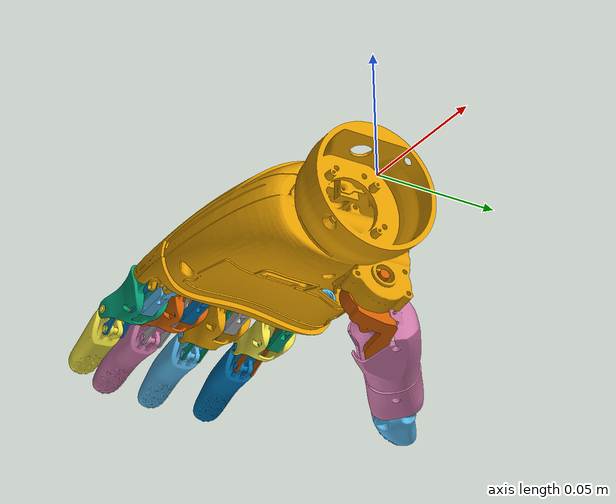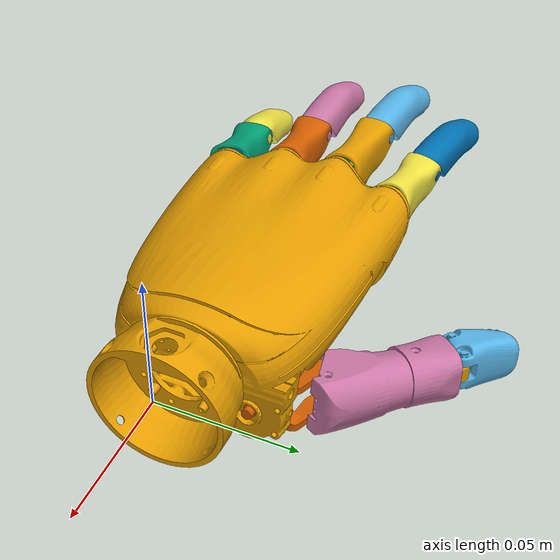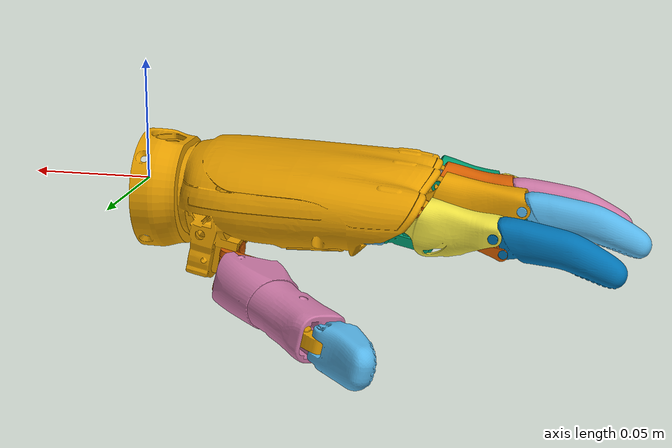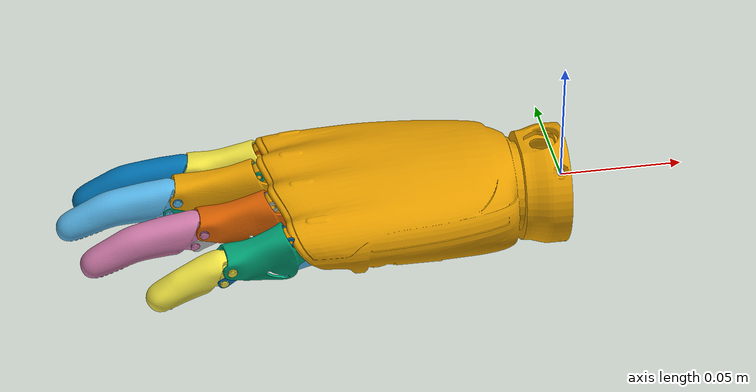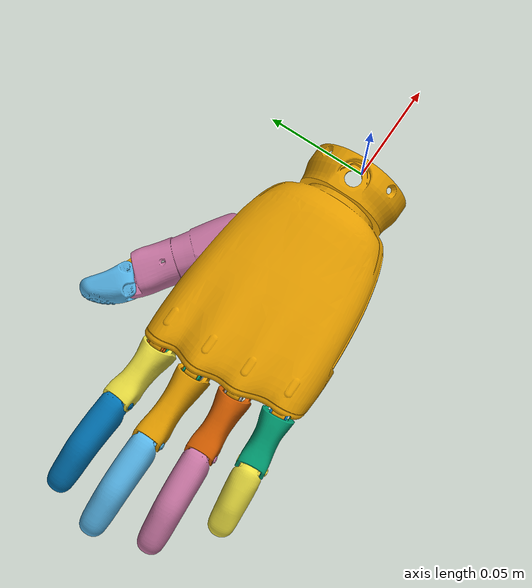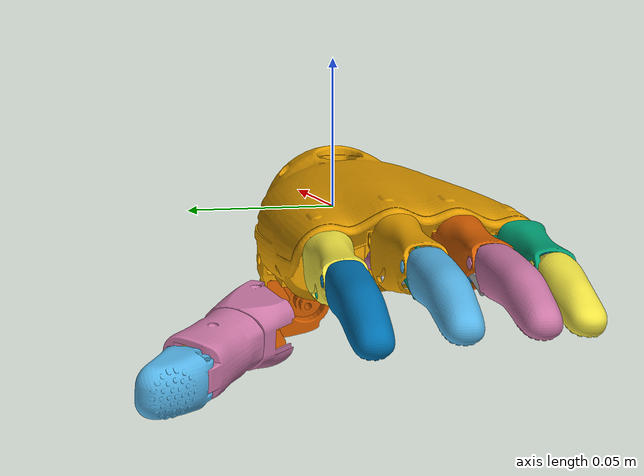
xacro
<?xml version="1.0" encoding="utf-8"?>
<robot name="OyMotion_$(arg type)" xmlns:xacro="http://www.ros.org/wiki/xacro">

	<xacro:arg name="type" default="rohand_gen2"/>
	<xacro:arg name="direction" default="1"/>

	<xacro:if value="${'$(arg type)' == 'rohand_gen2'}">
		<xacro:include filename="$(find oymotion_description)/xacro/rohand_gen2.xacro"/>
		<!-- 创建手部 (direction=1 为左手, direction=-1 为右手) -->
		<xacro:RoHandGen2 name="" direction="$(arg direction)"/>
	</xacro:if>

</robot>

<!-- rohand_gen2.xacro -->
<robot xmlns:xacro="http://www.ros.org/wiki/xacro">

	<xacro:macro name="RoHandGen2" params="name direction:=1 use_flange:=false fixed_joints:=false">
		<xacro:property name="prefix" value="${name + '_' if name else ''}"/>
		<xacro:property name="joint_type" value="${fixed_joints and 'fixed' or 'revolute'}"/>
		<xacro:property name="mesh_dir" value="${direction == 1 and 'meshes_l' or 'meshes_r'}"/>

		<!-- 手掌基座 (Hand Base) -->
		<link name="${prefix}hand_base">
			<inertial>
				<origin
						xyz="${direction == 1 and -0.0598893430300278 or -0.0601501237613002} ${direction*0.00158270648081169} -0.000121136868490832"/>
				<mass value="${direction == 1 and 0.0556275033895707 or 0.0567346930426757}"/>
				<inertia ixx="${direction == 1 and 2.49950041605433E-05 or 2.52815486560786E-05}"
								 ixy="${direction*1.27338810372926E-06}"
								 ixz="1.27175531802948E-06"
								 iyy="${direction == 1 and 3.31543651634603E-05 or 3.34458829784634E-05}"
								 iyz="${direction*4.65327956822343E-07}"
								 izz="${direction == 1 and 5.13224795287908E-05 or 5.18881189962893E-05}"/>
			</inertial>
			<visual>
				<geometry>
					<mesh filename="file://$(find oymotion_description)/meshes/rohand_gen2/base.obj" scale="1 ${direction} 1"/>
				</geometry>
			</visual>
			<collision>
				<geometry>
					<mesh filename="file://$(find oymotion_description)/meshes/rohand_gen2/base.obj" scale="1 ${direction} 1"/>
				</geometry>
			</collision>
		</link>

		<!-- 食指部分 (Index Finger - IF) -->
		<link name="${prefix}if_slider_link">
			<inertial>
				<origin
						xyz="-0.0138798261687736 ${direction*-1.63409975148521E-06} 1.56270413966333E-06"/>
				<mass value="0.000489121771249986"/>
				<inertia ixx="4.370139384762E-09"
								 ixy="${direction*7.06571113144488E-12}"
								 ixz="-1.07232864031138E-11"
								 iyy="3.84653443316186E-08"
								 iyz="${direction*7.09192685575601E-11}"
								 izz="3.92709222469408E-08"/>
			</inertial>
			<visual>
				<origin rpy="${direction*-0.07854} 0 0"/>
				<geometry>
					<mesh filename="file://$(find oymotion_description)/meshes/rohand_gen2/index_slider.obj"/>
				</geometry>
			</visual>
		</link>

		<joint name="${prefix}if_slider_link" type="prismatic">
			<origin xyz="-0.074388 ${direction*0.026652} -0.009751" rpy="0 0 ${direction*-0.083036}"/>
			<parent link="${prefix}hand_base"/>
			<child link="${prefix}if_slider_link"/>
			<axis xyz="1 0 0"/>
			<limit lower="0" upper="0.019" effort="0" velocity="0"/>
			<mimic joint="${prefix}index_joint" multiplier="0.01319444444" offset="0"/>
		</joint>

		<link name="${prefix}if_slider_abpart_link">
			<inertial>
				<origin
						xyz="-0.0105388475535051 -0.00349917028494312 -0.000539137690977614"/>
				<mass value="0.000420484116155222"/>
				<inertia ixx="1.76368054774551E-09"
								 ixy="1.07634598493537E-14"
								 ixz="-7.09975808646362E-10"
								 iyy="5.75814101151068E-09"
								 iyz="4.93512397675637E-15"
								 izz="6.21834665938993E-09"/>
			</inertial>
			<visual>
				<geometry>
					<mesh filename="file://$(find oymotion_description)/meshes/rohand_gen2/index_slider_abpart.obj"/>
				</geometry>
			</visual>
		</link>

		<joint name="${prefix}if_slider_abpart_link" type="fixed">
			<origin xyz="-0.029 0.0034859 ${direction*-0.00030434}" rpy="${direction*-0.087248} -0.0072243 0.0006319"/>
			<parent link="${prefix}if_slider_link"/>
			<child link="${prefix}if_slider_abpart_link"/>
			<axis xyz="0 1 0"/>
		</joint>

		<link name="${prefix}if_proximal_link">
			<inertial>
				<origin
						xyz="-0.0175140448638131 -0.00710044451763348 -0.0021340861272751"/>
				<mass value="0.00193519028805872"/>
				<inertia ixx="1.03940233353317E-07"
								 ixy="-1.03365620758552E-11"
								 ixz="1.27422660090348E-08"
								 iyy="2.32561269712758E-07"
								 iyz="-1.62211930568835E-12"
								 izz="2.36271452872982E-07"/>
			</inertial>
			<visual>
				<geometry>
					<mesh filename="file://$(find oymotion_description)/meshes/rohand_gen2/index_proximal.obj"
								scale="1 ${direction} 1"/>
				</geometry>
			</visual>
			<collision>
				<geometry>
					<mesh filename="file://$(find oymotion_description)/meshes/rohand_gen2/index_proximal.obj"
								scale="1 ${direction} 1"/>
				</geometry>
			</collision>
		</link>

		<joint name="${prefix}index_joint" type="revolute">
			<origin xyz="-0.1124 ${direction*0.037665} -0.0018024"
							rpy="${direction*-0.087248} -0.0072243 ${direction*-0.082404}"/>
			<parent link="${prefix}hand_base"/>
			<child link="${prefix}if_proximal_link"/>
			<axis xyz="0 -1 0"/>
			<limit lower="0" upper="1.44" effort="100" velocity="1"/>
		</joint>

		<link name="${prefix}if_distal_link">
			<inertial>
				<origin
						xyz="-0.0216633283077257 -0.00711560309930698 -0.00711907576465214"/>
				<mass value="0.00606060335159451"/>
				<inertia ixx="2.69279757341436E-07"
								 ixy="-6.25072148244773E-10"
								 ixz="-3.49035523733027E-07"
								 iyy="1.14783910667898E-06"
								 iyz="-8.57695095976865E-11"
								 izz="1.03262931906131E-06"/>
			</inertial>
			<visual>
				<geometry>
					<mesh filename="file://$(find oymotion_description)/meshes/rohand_gen2/index_distal.obj"
								scale="1 ${direction} 1"/>
				</geometry>
			</visual>
			<collision>
				<geometry>
					<mesh filename="file://$(find oymotion_description)/meshes/rohand_gen2/index_distal.obj"
								scale="1 ${direction} 1"/>
				</geometry>
			</collision>
		</link>

		<joint name="${prefix}if_distal_link" type="revolute">
			<origin xyz="-0.035842 0 -0.0023622"/>
			<parent link="${prefix}if_proximal_link"/>
			<child link="${prefix}if_distal_link"/>
			<axis xyz="0 -1 0"/>
			<limit lower="-0.378" upper="1.19" effort="100" velocity="1"/>
			<mimic joint="${prefix}index_joint" multiplier="1.08" offset="0.10472"/>
		</joint>

		<link name="${prefix}if_connecting_link">
			<inertial>
				<origin
						xyz="-0.0151010853330651 -0.00440000674510219 -0.00767252595733173"/>
				<mass value="0.000200341201168535"/>
				<inertia ixx="4.93599937155989E-09"
								 ixy="2.50110659785052E-22"
								 ixz="-9.91569202916332E-09"
								 iyy="2.67058367602193E-08"
								 iyz="8.72055160784029E-22"
								 izz="2.17912071167841E-08"/>
			</inertial>
			<visual>
				<geometry>
					<mesh filename="file://$(find oymotion_description)/meshes/rohand_gen2/index_connecting.obj"
								scale="1 ${direction} 1"/>
				</geometry>
			</visual>
		</link>

		<joint name="${prefix}if_connecting_link" type="revolute">
			<origin xyz="-0.11999 ${direction*0.035982} 0.0028163"
							rpy="${direction*-0.087248} -0.0072243 ${direction*-0.082404}"/>
			<parent link="${prefix}hand_base"/>
			<child link="${prefix}if_connecting_link"/>
			<axis xyz="0 -1 0"/>
			<limit lower="0" upper="1.44" effort="100" velocity="1"/>
			<mimic joint="${prefix}index_joint" multiplier="1" offset="0"/>
		</joint>

		<!-- 中指部分 (Middle Finger - MF) -->
		<link name="${prefix}mf_slider_link">
			<inertial>
				<origin
						xyz="-0.013879738947006 ${direction*-1.74897052737655E-06} 1.40815508845385E-06"/>
				<mass value="0.000489119216361822"/>
				<inertia ixx="4.37013728212438E-09"
								 ixy="${direction*8.09553980810116E-12}"
								 ixz="-1.01030547668162E-11"
								 iyy="3.84584635162927E-08"
								 iyz="${direction*-4.54664355226095E-14}"
								 izz="3.92763952727526E-08"/>
			</inertial>
			<visual>
				<geometry>
					<mesh filename="file://$(find oymotion_description)/meshes/rohand_gen2/index_slider.obj"/>
				</geometry>
			</visual>
		</link>

		<joint name="${prefix}mf_slider_link" type="prismatic">
			<origin xyz="-0.076966 ${direction*0.010074} -0.0054828" rpy="0 -4.7445E-05 ${direction*-0.013233}"/>
			<parent link="${prefix}hand_base"/>
			<child link="${prefix}mf_slider_link"/>
			<axis xyz="1 0 0"/>
			<limit lower="0" upper="0.019" effort="0" velocity="0"/>
			<mimic joint="${prefix}middle_joint" multiplier="0.01319444444" offset="0"/>
		</joint>

		<link name="${prefix}mf_slider_abpart_link">
			<inertial>
				<origin
						xyz="-0.0105343614474077 -0.00349998169282451 -0.000626801144449402"/>
				<mass value="0.000420507611933596"/>
				<inertia ixx="1.77591171959881E-09"
								 ixy="2.18465118929228E-14"
								 ixz="-7.46901101885596E-10"
								 iyy="5.75823388134478E-09"
								 iyz="${direction*-4.72877750426105E-15}"
								 izz="6.2064243581891E-09"/>
			</inertial>
			<visual>
				<geometry>
					<mesh filename="file://$(find oymotion_description)/meshes/rohand_gen2/index_slider_abpart.obj"/>
				</geometry>
			</visual>
		</link>

		<joint name="${prefix}mf_slider_abpart_link" type="fixed">
			<origin xyz="-0.029 0.0034992 0" rpy="${direction*-5.1711E-05} 4.6769E-05 0"/>
			<parent link="${prefix}mf_slider_link"/>
			<child link="${prefix}mf_slider_abpart_link"/>
			<axis xyz="0 1 0"/>
			<limit lower="-1.57" upper="1.57" effort="100" velocity="1"/>
		</joint>

		<link name="${prefix}mf_proximal_link">
			<inertial>
				<origin
						xyz="-0.0195726069209327 -0.00709993798307246 -0.0025925009808324"/>
				<mass value="0.00237722144967564"/>
				<inertia ixx="1.38350918039604E-07"
								 ixy="3.97589496119107E-12"
								 ixz="1.62917114105389E-08"
								 iyy="3.62213150878017E-07"
								 iyz="-4.71018831231994E-13"
								 izz="3.53062757955048E-07"/>
			</inertial>
			<visual>
				<geometry>
					<mesh filename="file://$(find oymotion_description)/meshes/rohand_gen2/middle_proximal.obj"
								scale="1 ${direction} 1"/>
				</geometry>
			</visual>
			<collision>
				<geometry>
					<mesh filename="file://$(find oymotion_description)/meshes/rohand_gen2/middle_proximal.obj"
								scale="1 ${direction} 1"/>
				</geometry>
			</collision>
		</link>

		<joint name="${prefix}middle_joint" type="revolute">
			<origin xyz="-0.11567 ${direction*0.017687} 0.0031149" rpy="${direction*-5.1083E-05} 0 ${direction*-0.013233}"/>
			<parent link="${prefix}hand_base"/>
			<child link="${prefix}mf_proximal_link"/>
			<axis xyz="0 -1 0"/>
			<limit lower="0" upper="1.44" effort="100" velocity="1"/>
		</joint>

		<link name="${prefix}mf_distal_link">
			<inertial>
				<origin
						xyz="-0.0222974016366708 -0.00711558403314083 -0.00477681256742756"/>
				<mass value="0.00606061622476954"/>
				<inertia ixx="2.04134343687428E-07"
								 ixy="-6.30322389240146E-10"
								 ixz="-2.6048594906679E-07"
								 iyy="1.1478347378536E-06"
								 iyz="-2.06612639823312E-11"
								 izz="1.09777031784971E-06"/>
			</inertial>
			<visual>
				<geometry>
					<mesh filename="file://$(find oymotion_description)/meshes/rohand_gen2/index_distal.obj"
								scale="1 ${direction} 1"/>
				</geometry>
			</visual>
			<collision>
				<geometry>
					<mesh filename="file://$(find oymotion_description)/meshes/rohand_gen2/index_distal.obj"
								scale="1 ${direction} 1"/>
				</geometry>
			</collision>
		</link>

		<joint name="${prefix}mf_distal_link" type="revolute">
			<origin xyz="-0.040918 0 -0.0027058"/>
			<parent link="${prefix}mf_proximal_link"/>
			<child link="${prefix}mf_distal_link"/>
			<axis xyz="0 -1 0"/>
			<limit lower="-0.378" upper="1.19" effort="100" velocity="1"/>
			<mimic joint="${prefix}middle_joint" multiplier="1.14" offset="0"/>
		</joint>

		<link name="${prefix}mf_connecting_link">
			<inertial>
				<origin
						xyz="-0.0178219448735733 -0.00440000679587479 -0.00781642890952098"/>
				<mass value="0.000215108931947231"/>
				<inertia ixx="5.12266479684199E-09"
								 ixy="${direction*-2.30231599132434E-16}"
								 ixz="-1.23169151647663E-08"
								 iyy="3.73207495269829E-08"
								 iyz="${direction*-1.76315646093205E-17}"
								 izz="3.22210301621937E-08"/>
			</inertial>
			<visual>
				<geometry>
					<mesh filename="file://$(find oymotion_description)/meshes/rohand_gen2/middle_connecting.obj"
								scale="1 ${direction} 1"/>
				</geometry>
			</visual>
		</link>

		<joint name="${prefix}mf_connecting_link" type="revolute">
			<origin xyz="-0.12312 ${direction*0.015086} 0.0075148" rpy="${direction*-5.1083E-05} 0 ${direction*-0.013233}"/>
			<parent link="${prefix}hand_base"/>
			<child link="${prefix}mf_connecting_link"/>
			<axis xyz="0 -1 0"/>
			<limit lower="0" upper="1.44" effort="100" velocity="1"/>
			<mimic joint="${prefix}middle_joint" multiplier="1" offset="0"/>
		</joint>

		<!-- 无名指部分 (Ring Finger - RF) -->
		<link name="${prefix}rf_slider_link">
			<inertial>
				<origin
						xyz="-0.0138798258009711 ${direction*-1.7630856294637E-06} 1.41436010220319E-06"/>
				<mass value="0.000489121716234798"/>
				<inertia ixx="4.37013924272089E-09"
								 ixy="${direction*7.98341349100753E-12}"
								 ixz="-1.00637162967002E-11"
								 iyy="3.84591429779013E-08"
								 iyz="${direction*-2.39260015530946E-14}"
								 izz="3.92771122673803E-08"/>
			</inertial>
			<visual>
				<geometry>
					<mesh filename="file://$(find oymotion_description)/meshes/rohand_gen2/index_slider.obj"/>
				</geometry>
			</visual>
		</link>

		<joint name="${prefix}rf_slider_link" type="prismatic">
			<origin xyz="-0.074491 ${direction*-0.0072514} -0.0062279" rpy="0 -9.51E-05 ${direction*0.056583}"/>
			<parent link="${prefix}hand_base"/>
			<child link="${prefix}rf_slider_link"/>
			<axis xyz="1 0 0"/>
			<limit lower="0" upper="0.019" effort="0" velocity="0"/>
			<mimic joint="${prefix}ring_joint" multiplier="0.01319444444" offset="0"/>
		</joint>

		<link name="${prefix}rf_slider_abpart_link">
			<inertial>
				<origin
						xyz="-0.0105346161828967 -0.0034991714039278 -0.000616604082522784"/>
				<mass value="0.000420484347510521"/>
				<inertia ixx="1.7743695373506E-09"
								 ixy="${direction*-6.61128484560698E-16}"
								 ixz="-7.4264758660374E-10"
								 iyy="5.75818415756346E-09"
								 iyz="${direction*9.7586839459254E-16}"
								 izz="6.20770251900989E-09"/>
			</inertial>
			<visual>
				<geometry>
					<mesh filename="file://$(find oymotion_description)/meshes/rohand_gen2/index_slider_abpart.obj"/>
				</geometry>
			</visual>
		</link>

		<joint name="${prefix}rf_slider_abpart_link" type="fixed">
			<origin xyz="-0.029 0.0034992 0" rpy="${direction*-7.4035E-05} 9.9598E-05 0"/>
			<parent link="${prefix}rf_slider_link"/>
			<child link="${prefix}rf_slider_abpart_link"/>
			<axis xyz="0 1 0"/>
		</joint>

		<link name="${prefix}rf_proximal_link">
			<inertial>
				<origin
						xyz="-0.0174979508864504 -0.00710049013135008 -0.00226277263902305"/>
				<mass value="0.00193520497103009"/>
				<inertia ixx="1.0376023209322E-07"
								 ixy="-1.1368612880424E-11"
								 ixz="1.17683465238561E-08"
								 iyy="2.32563708976524E-07"
								 iyz="-1.57696849032522E-12"
								 izz="2.36453950760326E-07"/>
			</inertial>
			<visual>
				<geometry>
					<mesh filename="file://$(find oymotion_description)/meshes/rohand_gen2/index_proximal.obj"
								scale="1 ${direction} 1"/>
				</geometry>
			</visual>
			<collision>
				<geometry>
					<mesh filename="file://$(find oymotion_description)/meshes/rohand_gen2/index_proximal.obj"
								scale="1 ${direction} 1"/>
				</geometry>
			</collision>
		</link>

		<joint name="${prefix}ring_joint" type="revolute">
			<origin xyz="-0.11363 ${direction*-0.0023572} 0.0023678" rpy="${direction*-7.9422E-05} 0 ${direction*0.056583}"/>
			<parent link="${prefix}hand_base"/>
			<child link="${prefix}rf_proximal_link"/>
			<axis xyz="0 -1 0"/>
			<limit lower="0" upper="1.44" effort="100" velocity="1"/>
		</joint>

		<link name="${prefix}rf_distal_link">
			<inertial>
				<origin
						xyz="-0.0216092529376596 -0.00711576465854113 -0.00727779172773769"/>
				<mass value="0.00606025074073705"/>
				<inertia ixx="2.74441581152407E-07"
								 ixy="-6.40779910908579E-10"
								 ixz="-3.5457449251434E-07"
								 iyy="1.1477310762233E-06"
								 iyz="-9.97795177845929E-11"
								 izz="1.02735601486271E-06"/>
			</inertial>
			<visual>
				<geometry>
					<mesh filename="file://$(find oymotion_description)/meshes/rohand_gen2/index_distal.obj"
								scale="1 ${direction} 1"/>
				</geometry>
			</visual>
			<collision>
				<geometry>
					<mesh filename="file://$(find oymotion_description)/meshes/rohand_gen2/index_distal.obj"
								scale="1 ${direction} 1"/>
				</geometry>
			</collision>
		</link>

		<joint name="${prefix}rf_distal_link" type="revolute">
			<origin xyz="-0.035824 0 -0.0026256"/>
			<parent link="${prefix}rf_proximal_link"/>
			<child link="${prefix}rf_distal_link"/>
			<axis xyz="0 -1 0"/>
			<limit lower="-0.378" upper="1.19" effort="100" velocity="1"/>
			<mimic joint="${prefix}ring_joint" multiplier="1.09" offset="0.10472"/>
		</joint>

		<link name="${prefix}rf_connecting_link">
			<inertial>
				<origin
						xyz="-0.0150442736302722 -0.00440000674510205 -0.00778333243154511"/>
				<mass value="0.000200341201168546"/>
				<inertia ixx="5.0826943515327E-09"
								 ixy="2.23047888569839E-22"
								 ixz="-1.00385259556707E-08"
								 iyy="2.67058367602199E-08"
								 iyz="9.08104059425163E-22"
								 izz="2.1644512136812E-08"/>
			</inertial>
			<visual>
				<geometry>
					<mesh filename="file://$(find oymotion_description)/meshes/rohand_gen2/index_connecting.obj" scale="1 ${direction} 1"/>
				</geometry>
			</visual>
		</link>

		<joint name="${prefix}rf_connecting_link" type="revolute">
			<origin xyz="-0.12089 ${direction*-0.0054721} 0.0067674" rpy="${direction*-7.9422E-05} 0 ${direction*0.056583}"/>
			<parent link="${prefix}hand_base"/>
			<child link="${prefix}rf_connecting_link"/>
			<axis xyz="0 -1 0"/>
			<limit lower="0" upper="1.44" effort="100" velocity="1"/>
			<mimic joint="${prefix}ring_joint" multiplier="1" offset="0"/>
		</joint>

		<!-- 小指部分 (Little Finger - LF) -->
		<link name="${prefix}lf_slider_link">
			<inertial>
				<origin
						xyz="-0.0138798068165006 ${direction*-1.85254072257446E-06} 1.26050045467369E-06"/>
				<mass value="0.00048912103124811"/>
				<inertia ixx="4.37013150544609E-09"
								 ixy="${direction*9.05564429262533E-12}"
								 ixz="-9.28329150450517E-12"
								 iyy="3.84652401870241E-08"
								 iyz="${direction*-7.11168129144E-11}"
								 izz="3.92707496534642E-08"/>
			</inertial>
			<visual>
				<origin rpy="${direction*0.07854} 0 0"/>
				<geometry>
					<mesh filename="file://$(find oymotion_description)/meshes/rohand_gen2/index_slider.obj"/>
				</geometry>
			</visual>
		</link>

		<joint name="${prefix}lf_slider_link" type="prismatic">
			<origin xyz="-0.070738 ${direction*-0.024172} -0.0087474" rpy="-1.1295E-05 -9.4916E-05 ${direction*0.11844}"/>
			<parent link="${prefix}hand_base"/>
			<child link="${prefix}lf_slider_link"/>
			<axis xyz="1 0 0"/>
			<limit lower="0" upper="0.019" effort="0" velocity="0"/>
			<mimic joint="${prefix}pinky_joint" multiplier="0.01319444444" offset="0"/>
		</joint>

		<link name="${prefix}lf_slider_abpart_link">
			<inertial>
				<origin
						xyz="-0.0105336696920708 -0.00349998175696256 -0.000638311411829177"/>
				<mass value="0.000420507370337398"/>
				<inertia ixx="1.77754956303901E-09"
								 ixy="2.25303455182354E-14"
								 ixz="-7.51740050800551E-10"
								 iyy="5.75823858697269E-09"
								 iyz="${direction*-5.19212425720909E-15}"
								 izz="6.20478922060532E-09"/>
			</inertial>
			<visual>
				<geometry>
					<mesh filename="file://$(find oymotion_description)/meshes/rohand_gen2/index_slider_abpart.obj"/>
				</geometry>
			</visual>
		</link>

		<joint name="${prefix}lf_slider_abpart_link" type="fixed">
			<origin xyz="-0.029 0.0034858 ${direction*0.00030556}"
							rpy="${direction*0.087277} -0.010237 ${direction*-0.0008957}"/>
			<parent link="${prefix}lf_slider_link"/>
			<child link="${prefix}lf_slider_abpart_link"/>
			<axis xyz="0 1 0"/>
		</joint>

		<link name="${prefix}lf_proximal_link">
			<inertial>
				<origin
						xyz="-0.0157992124712836 -0.00709938848171213 -0.00218594586460848"/>
				<mass value="0.00177911361510511"/>
				<inertia ixx="9.43847455168695E-08"
								 ixy="2.11914214317114E-12"
								 ixz="3.98041900431446E-09"
								 iyy="1.765512506167E-07"
								 iyz="-3.47889342713738E-12"
								 izz="1.82140773801916E-07"/>
			</inertial>
			<visual>
				<geometry>
					<mesh filename="file://$(find oymotion_description)/meshes/rohand_gen2/little_proximal.obj"
								scale="1 ${direction} 1"/>
				</geometry>
			</visual>
			<collision>
				<geometry>
					<mesh filename="file://$(find oymotion_description)/meshes/rohand_gen2/little_proximal.obj"
								scale="1 ${direction} 1"/>
				</geometry>
			</collision>
		</link>

		<joint name="${prefix}pinky_joint" type="revolute">
			<origin xyz="-0.11021 ${direction*-0.022502} 0.0004348"
							rpy="${direction*0.087265} -0.010332 ${direction*0.11755}"/>
			<parent link="${prefix}hand_base"/>
			<child link="${prefix}lf_proximal_link"/>
			<axis xyz="0 -1 0"/>
			<limit lower="0" upper="1.44" effort="100" velocity="1"/>
		</joint>

		<link name="${prefix}lf_distal_link">
			<inertial>
				<origin
						xyz="${direction == 1 and -0.014792352133053 or -0.0162417803445297} -0.00711194111579797 -0.00576926656969271"/>
				<mass value="${direction == 1 and 0.00364905952774006 or 0.00177085221629863}"/>
				<inertia ixx="${direction == 1 and 1.16405281165586E-07 or 7.15021227777549E-08}"
								 ixy="-1.0930283880972E-10"
								 ixz="${direction == 1 and -1.05538072627637E-07 or -5.21268230323306E-08}"
								 iyy="${direction == 1 and 3.22371236250377E-07 or 1.52542059538213E-07}"
								 iyz="-2.53838436165125E-11"
								 izz="${direction == 1 and 2.9014250264879E-07 or 1.31932840690477E-07}"/>
			</inertial>
			<visual>
				<geometry>
					<mesh filename="file://$(find oymotion_description)/meshes/rohand_gen2/little_distal.obj"
								scale="1 ${direction} 1"/>
				</geometry>
			</visual>
			<collision>
				<geometry>
					<mesh filename="file://$(find oymotion_description)/meshes/rohand_gen2/little_distal.obj"
								scale="1 ${direction} 1"/>
				</geometry>
			</collision>
		</link>

		<joint name="${prefix}lf_distal_link" type="revolute">
			<origin xyz="-0.03178 0 -0.0031085"/>
			<parent link="${prefix}lf_proximal_link"/>
			<child link="${prefix}lf_distal_link"/>
			<axis xyz="0 -1 0"/>
			<limit lower="-0.378" upper="1.19" effort="100" velocity="1"/>
			<mimic joint="${prefix}pinky_joint" multiplier="1.09" offset="0"/>
		</joint>

		<link name="${prefix}lf_connecting_link">
			<inertial>
				<origin
						xyz="-0.0134290613154075 -0.0044000864327523 -0.0072173089037906"/>
				<mass value="0.000176992753343061"/>
				<inertia ixx="4.55971472140014E-09"
								 ixy="${direction*-5.2063910976824E-23}"
								 ixz="-7.95367282498553E-09"
								 iyy="1.94958291708418E-08"
								 iyz="${direction*-9.45053849841834E-23}"
								 izz="1.49549936764649E-08"/>
			</inertial>
			<visual>
				<geometry>
					<mesh filename="file://$(find oymotion_description)/meshes/rohand_gen2/little_connecting.obj" scale="1 ${direction} 1"/>
				</geometry>
			</visual>
		</link>

		<joint name="${prefix}lf_connecting_link" type="revolute">
			<origin xyz="-0.11722 ${direction*-0.02643} 0.0045821"
							rpy="${direction*0.087265} -0.010332 ${direction*0.11755}"/>
			<parent link="${prefix}hand_base"/>
			<child link="${prefix}lf_connecting_link"/>
			<axis xyz="0 -1 0"/>
			<limit lower="0" upper="1.44" effort="100" velocity="1"/>
			<mimic joint="${prefix}pinky_joint" multiplier="1" offset="0"/>
		</joint>

		<!-- 拇指部分 (Thumb - TH) -->
		<link name="${prefix}th_root_link">
			<inertial>
				<origin
						xyz="-0.0191622399793213  ${direction*0.00595074380964034} -0.00194553122846729 "/>
				<mass value="${direction == 1 and 0.00219012478679673 or 0.00217787514894826}"/>
				<inertia ixx="1.85863297233334E-07"
								 ixy="${direction*8.44488625640815E-08}"
								 ixz="${direction*-7.43973909695847E-09}"
								 iyy="2.00161108988447E-07"
								 iyz="${direction*1.02685220338149E-08}"
								 izz="2.31189836973949E-07"/>
			</inertial>
			<visual>
				<geometry>
					<mesh filename="file://$(find oymotion_description)/meshes/rohand_gen2/thumb_root.obj"
								scale="1 ${direction} 1"/>
				</geometry>
			</visual>
			<collision>
				<geometry>
					<mesh filename="file://$(find oymotion_description)/meshes/rohand_gen2/thumb_root.obj"
								scale="1 ${direction} 1"/>
				</geometry>
			</collision>
		</link>

		<joint name="${prefix}thumb_joint1" type="revolute">
			<origin xyz="-0.025192 ${direction*0.019558} -0.022233"
							rpy="0 -0.21841 ${direction*-0.013249}"/>
			<parent link="${prefix}hand_base"/>
			<child link="${prefix}th_root_link"/>
			<axis xyz="${direction*-1} 0 0"/>
			<limit lower="0" upper="1.57" effort="0" velocity="0"/>
		</joint>

		<link name="${prefix}th_proximal_link">
			<inertial>
				<origin
						xyz="${direction * -0.0192347391372184} ${direction*0.0121170679670023} ${direction * 0.00894555366415514}"/>
				<mass value="0.00544482144605495"/>
				<inertia ixx="6.87367810540996E-07"
								 ixy="${direction*6.84841509366104E-07}"
								 ixz="${direction*5.96242841042312E-10}"
								 iyy="1.61931504318991E-06"
								 iyz="${direction*-4.13444178095852E-10}"
								 izz="2.1994454397351E-06"/>
			</inertial>
			<visual>
				<geometry>
					<mesh filename="file://$(find oymotion_description)/meshes/rohand_gen2/thumb_proximal.obj"
								scale="1 ${direction} 1"/>
				</geometry>
			</visual>
			<collision>
				<geometry>
					<mesh filename="file://$(find oymotion_description)/meshes/rohand_gen2/thumb_proximal.obj"
								scale="1 ${direction} 1"/>
				</geometry>
			</collision>
		</link>

		<joint name="${prefix}thumb_joint2" type="revolute">
			<origin
					xyz="-0.028155 ${direction*0.021344}  -0.011022"/>
			<parent link="${prefix}th_root_link"/>
			<child link="${prefix}th_proximal_link"/>
			<axis xyz="0 0 ${direction}"/>
			<limit lower="0" upper="0.7763" effort="100" velocity="1"/>
		</joint>

		<link name="${prefix}th_slider_link">
			<inertial>
				<origin
						xyz="${direction*0.0101621251236571} ${direction*-0.0012655961330878} 5.17607787882332E-05"/>
				<mass value="0.00096692626401777"/>
				<inertia ixx="2.47243327370719E-08"
								 ixy="${direction*-1.4622472700325E-09}"
								 ixz="${direction*5.97173083984643E-11}"
								 iyy="7.8541343112514E-08"
								 iyz="${direction*-7.4277598975741E-10}"
								 izz="6.04989680057413E-08"/>
			</inertial>
			<visual>
				<geometry>
					<mesh filename="file://$(find oymotion_description)/meshes/rohand_gen2/thumb_slider.obj"
								scale="1 ${direction} 1"/>
				</geometry>
			</visual>
			<collision>
				<geometry>
					<mesh filename="file://$(find oymotion_description)/meshes/rohand_gen2/thumb_slider.obj"
								scale="1 ${direction} 1"/>
				</geometry>
			</collision>
		</link>

		<joint name="${prefix}th_slider_link" type="prismatic">
			<origin xyz="-0.0038117 ${direction*0.0056317} 0.00895"
							rpy="0 0 ${direction*2.4643}"/>
			<parent link="${prefix}th_proximal_link"/>
			<child link="${prefix}th_slider_link"/>
			<axis xyz="1 0 0"/>
			<limit lower="0" upper="0.01" effort="0" velocity="0"/>
			<mimic joint="${prefix}thumb_joint2" multiplier="0.0128" offset="0"/>
		</joint>

		<link name="${prefix}th_connecting_link">
			<inertial>
				<origin xyz="${direction * 0.00413462447739064 } ${direction*0.00236786600962768} -0.00403967505861522"/>
				<mass value="${direction == 1 and 0.000337394683077766 or 0.00033738169009293}"/>
				<inertia ixx="${direction == 1 and 2.88091081371191E-09 or 2.86122244570305E-09}"
								 ixy="${direction == 1 and -1.3743817786895E-09 or -4.92246058191517E-14}"
								 ixz="${direction == 1 and 1.96126283402737E-14 or 1.35882549942877E-09}"
								 iyy="${direction == 1 and 5.03160357084915E-09 or 5.07966846789053E-09}"
								 iyz="${direction == 1 and -4.9896915156034E-15 or 2.77065232715016E-14}"
								 izz="${direction == 1 and 5.0799913183601E-09 or 5.05091504791671E-09}"/>
			</inertial>
			<visual>
				<geometry>
					<mesh filename="file://$(find oymotion_description)/meshes/rohand_gen2/thumb_connecting.obj"
								scale="1 ${direction} 1"/>
				</geometry>
			</visual>
			<collision>
				<geometry>
					<mesh filename="file://$(find oymotion_description)/meshes/rohand_gen2/thumb_connecting.obj"
								scale="1 ${direction} 1"/>
				</geometry>
			</collision>
		</link>

		<joint name="${prefix}th_connecting_link" type="revolute">
			<origin xyz="0.0333 0.0003242 0.00399"
							rpy="0 0 ${direction * 0.67687} "/>
			<parent link="${prefix}th_slider_link"/>
			<child link="${prefix}th_connecting_link"/>
			<axis xyz="0 0 ${direction}"/>
			<limit lower="-3.14" upper="3.14" effort="100" velocity="1"/>
			<mimic joint="${prefix}thumb_joint2" multiplier="0.45" offset="0"/>
		</joint>

		<link name="${prefix}th_distal_link">
			<inertial>
				<origin
						xyz="${direction * 0.00342833391243533 } ${direction*0.0104884707396525} ${direction * -0.00696970588984302}"/>
				<mass value="${direction == 1 and 0.00398421921008986 or 0.00247307051858648}"/>
				<inertia ixx="${direction == 1 and 2.1176714290296E-07 or 1.08745224763208E-07}"
								 ixy="${direction == 1 and -3.63382572920753E-08 or 3.25118901423986E-12}"
								 ixz="${direction == 1 and -5.79449501160711E-12 or 2.99814543781151E-08}"
								 iyy="${direction == 1 and 2.30043683188489E-07 or 1.24259628567107E-07}"
								 iyz="${direction == 1 and 1.08342174820893E-11 or -1.49461582877226E-12}"
								 izz="${direction == 1 and 2.14387495065774E-07 or 1.42175287381468E-07}"/>
			</inertial>
			<visual>
				<geometry>
					<mesh filename="file://$(find oymotion_description)/meshes/rohand_gen2/thumb_distal.obj"
								scale="1 ${direction} 1"/>
				</geometry>
			</visual>
			<collision>
				<geometry>
					<mesh filename="file://$(find oymotion_description)/meshes/rohand_gen2/thumb_distal.obj"
								scale="1 ${direction} 1"/>
				</geometry>
			</collision>
		</link>

		<joint name="${prefix}th_distal_link" type="revolute">
			<origin xyz="-0.046968 ${direction * 0.023498 }  0.002 "/>
			<parent link="${prefix}th_proximal_link"/>
			<child link="${prefix}th_distal_link"/>
			<axis xyz="0 0 ${direction}"/>
			<limit lower="0" upper="0.7763" effort="100" velocity="1"/>
			<mimic joint="${prefix}thumb_joint2" multiplier="1" offset="0"/>
		</joint>

	</xacro:macro>

</robot>
